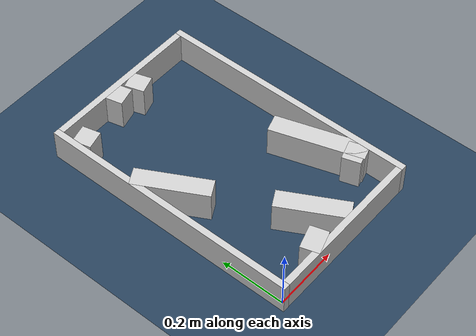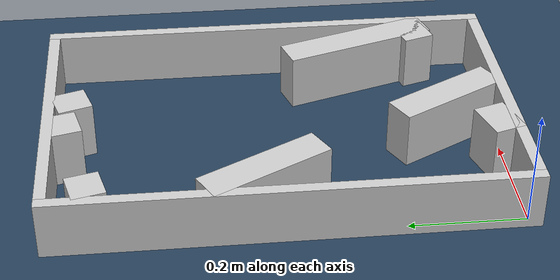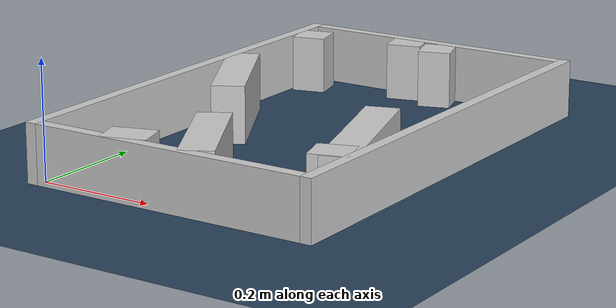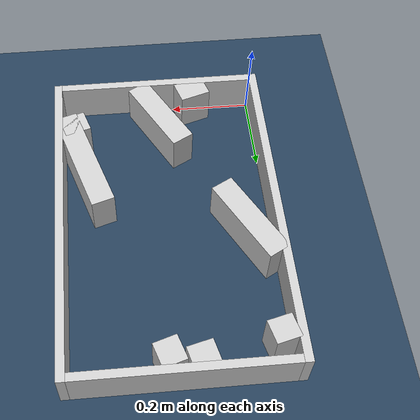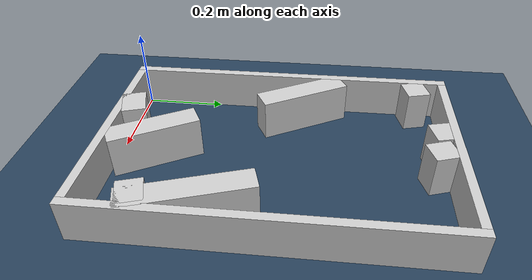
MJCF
<?xml version="1.0" ?>
<mujoco model="generated_real_template">
  <compiler angle="degree"/>
  <option timestep="0.002" integrator="implicitfast" iterations="100" cone="elliptic"/>
  <default>
    <geom density="1"/>
  </default>
  <asset>
    <texture builtin="gradient" height="3072" rgb1="0.3 0.5 0.7" rgb2="0 0 0" type="skybox" width="512"/>
    <texture builtin="checker" height="300" mark="edge" markrgb="0.8 0.8 0.8" name="groundplane" rgb1="0.2 0.3 0.4" rgb2="0.1 0.2 0.3" type="2d" width="300"/>
    <material name="groundplane" reflectance="0.2" texrepeat="5 5" texture="groundplane" texuniform="true"/>
  </asset>
  <worldbody>
    <light dir="0 0 -1" directional="true" pos="0 0 1.5"/>
    <geom name="floor" type="plane" condim="4" friction="0.5 0.005 0.001" material="groundplane" size="0 0 0.05"/>
    <body name="walls">
      <geom name="wall_boundary_left" type="box" condim="4" friction="1.0 0.005 0.0001" rgba="0.8 0.8 0.8 1" pos="-0.010000 0.387500 0.050000" euler="0 0 0.000000" size="0.010000 0.407500 0.050000"/>
      <geom name="wall_boundary_right" type="box" condim="4" friction="1.0 0.005 0.0001" rgba="0.8 0.8 0.8 1" pos="0.500000 0.387500 0.050000" euler="0 0 0.000000" size="0.010000 0.407500 0.050000"/>
      <geom name="wall_boundary_bottom" type="box" condim="4" friction="1.0 0.005 0.0001" rgba="0.8 0.8 0.8 1" pos="0.245000 -0.010000 0.050000" euler="0 0 0.000000" size="0.245000 0.010000 0.050000"/>
      <geom name="wall_boundary_top" type="box" condim="4" friction="1.0 0.005 0.0001" rgba="0.8 0.8 0.8 1" pos="0.245000 0.785000 0.050000" euler="0 0 0.000000" size="0.245000 0.010000 0.050000"/>
      <geom name="wall_inner_1_1" type="box" condim="4" friction="1.0 0.005 0.0001" rgba="0.8 0.8 0.8 1" pos="0.203244 0.759919 0.050000" euler="0 0 -165.809237" size="0.030388 0.028500 0.050000"/>
      <geom name="wall_inner_1_2" type="box" condim="4" friction="1.0 0.005 0.0001" rgba="0.8 0.8 0.8 1" pos="0.028460 0.715722 0.050000" euler="0 0 -165.809237" size="0.029355 0.028500 0.050000"/>
      <geom name="wall_inner_2_1" type="box" condim="4" friction="1.0 0.005 0.0001" rgba="0.8 0.8 0.8 1" pos="0.459037 0.114520 0.050000" euler="0 0 -162.578632" size="0.032451 0.028500 0.050000"/>
      <geom name="wall_inner_2_2" type="box" condim="4" friction="1.0 0.005 0.0001" rgba="0.8 0.8 0.8 1" pos="0.153680 0.018702 0.050000" euler="0 0 -162.578632" size="0.038438 0.028500 0.050000"/>
      <geom name="wall_inner_3_1" type="box" condim="4" friction="1.0 0.005 0.0001" rgba="0.8 0.8 0.8 1" pos="0.439754 0.223307 0.050000" euler="0 0 107.677706" size="0.141903 0.028500 0.050000"/>
      <geom name="wall_inner_3_2" type="box" condim="4" friction="1.0 0.005 0.0001" rgba="0.8 0.8 0.8 1" pos="0.273070 0.746300 0.050000" euler="0 0 107.677706" size="0.030123 0.028500 0.050000"/>
      <geom name="wall_inner_4_1" type="box" condim="4" friction="1.0 0.005 0.0001" rgba="0.8 0.8 0.8 1" pos="0.059307 0.428460 0.050000" euler="0 0 -61.380381" size="0.113337 0.028500 0.050000"/>
      <geom name="wall_inner_4_2" type="box" condim="4" friction="1.0 0.005 0.0001" rgba="0.8 0.8 0.8 1" pos="0.242399 0.092918 0.050000" euler="0 0 -61.380381" size="0.105851 0.028500 0.050000"/>
    </body>
  </worldbody>
</mujoco>
